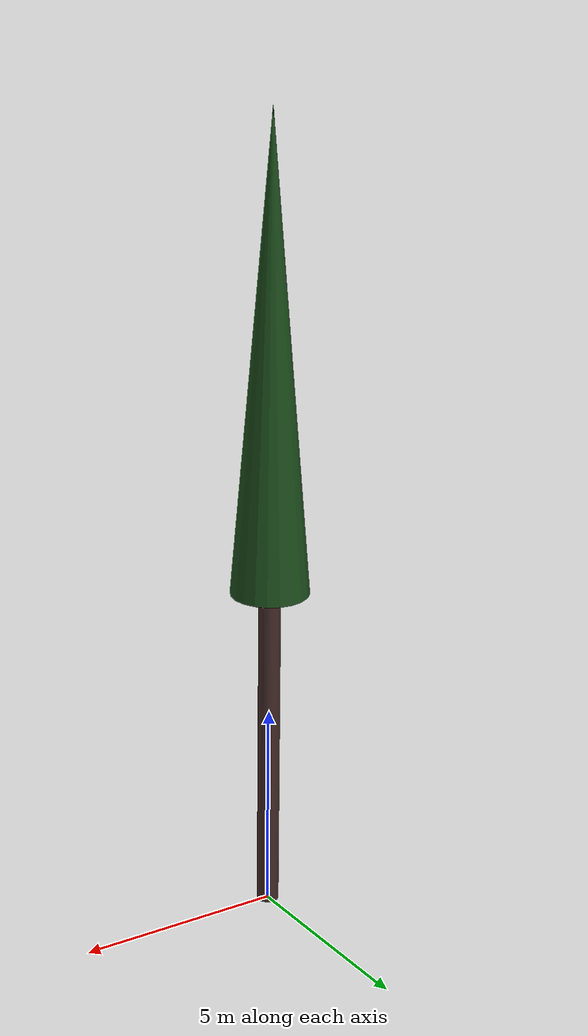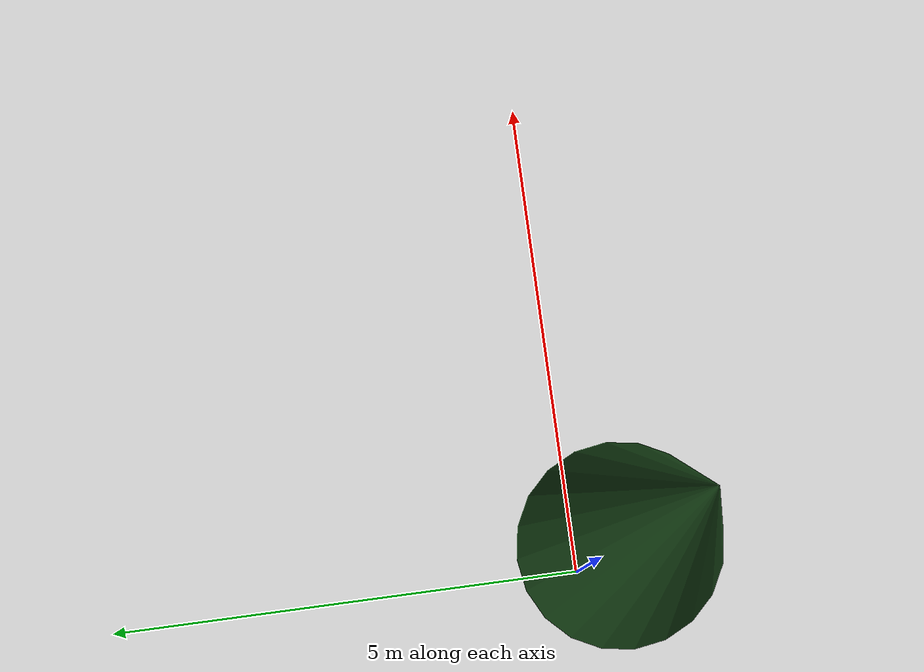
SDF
<?xml version="1.0" ?>
<sdf version="1.10">
  <model name="cypres_provence_06">
    <static>true</static>

    <!-- Tronc -->
    <link name="trunk">
      <pose>0 0 4.0212842402024895 0 0 0</pose>
      <visual name="trunk_visual">
        <geometry>
          <cylinder>
            <radius>0.26040767612588445</radius>
            <length>8.042568480404979</length>
          </cylinder>
        </geometry>
        <material>
          <ambient>0.24 0.15 0.14 1</ambient>
          <diffuse>0.24 0.15 0.14 1</diffuse>
          <specular>0.1 0.1 0.1 1</specular>
        </material>
      </visual>
      <collision name="trunk_collision">
        <geometry>
          <cylinder>
            <radius>0.26040767612588445</radius>
            <length>8.042568480404979</length>
          </cylinder>
        </geometry>
      </collision>
    </link>

    <!-- Feuillage -->
    <link name="crown">
      <pose>0 0 13.706676582629193 0 0 0</pose>
      <visual name="crown_visual">
        <geometry>
          <cone>
              <radius>0.9374043846227083</radius>
              <length>11.328216204448427</length>
            </cone>
        </geometry>
        <material>
          <ambient>0.10 0.29 0.10 1</ambient>
          <diffuse>0.10 0.29 0.10 1</diffuse>
          <specular>0.1 0.1 0.1 1</specular>
        </material>
      </visual>
      <collision name="crown_collision">
        <geometry>
          <sphere>
            <radius>0.7499235076981666</radius>
          </sphere>
        </geometry>
      </collision>
    </link>

    <!-- Joint tronc-feuillage -->
    <joint name="trunk_crown_joint" type="fixed">
      <parent>trunk</parent>
      <child>crown</child>
    </joint>

  </model>
</sdf>
